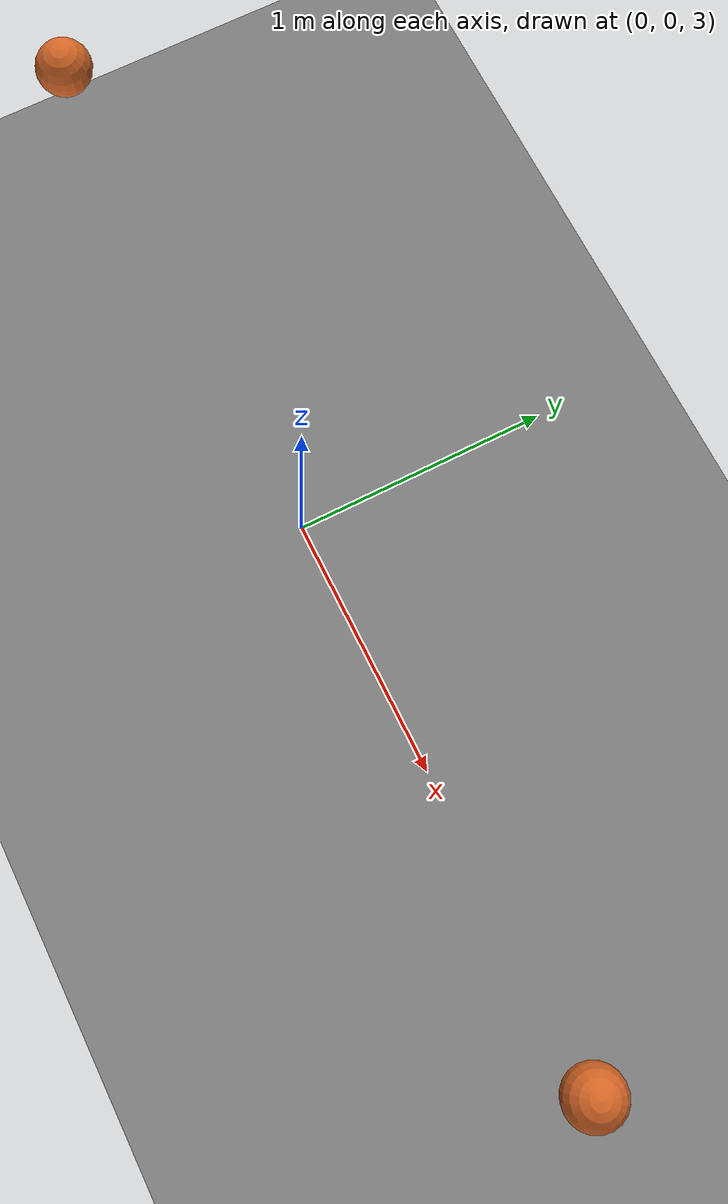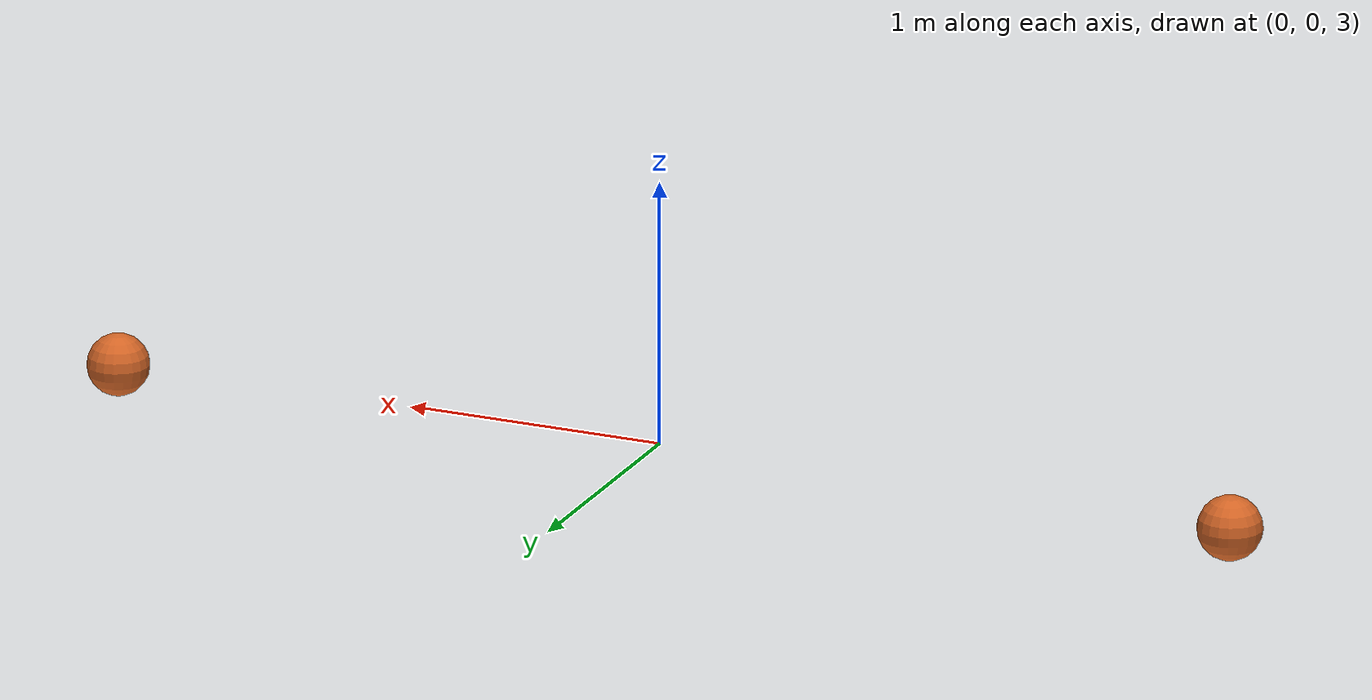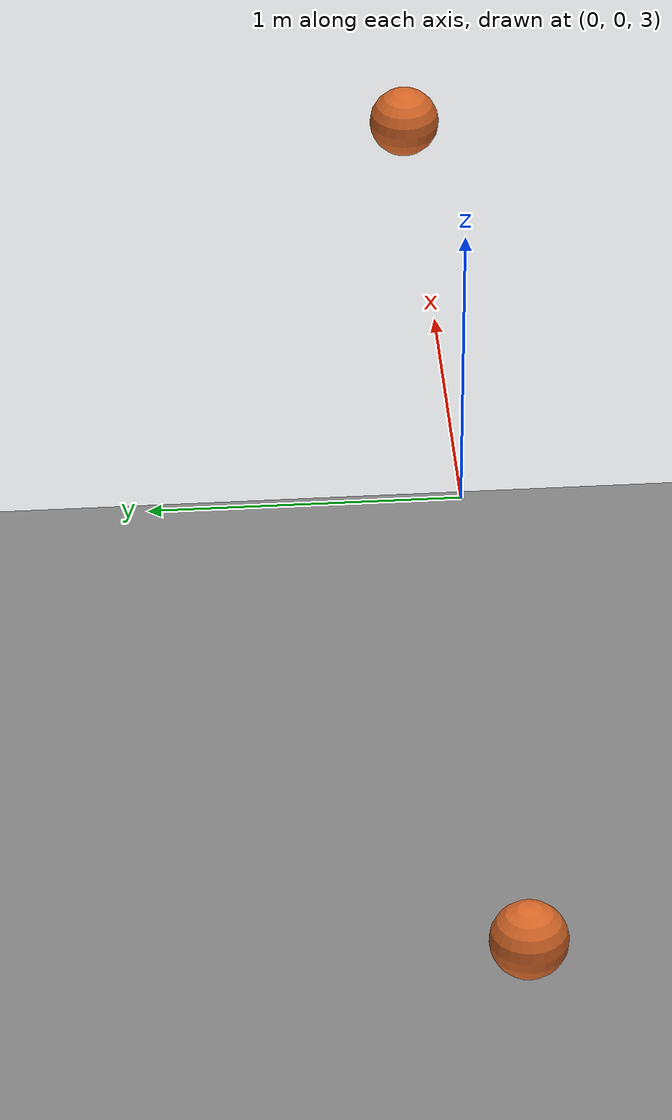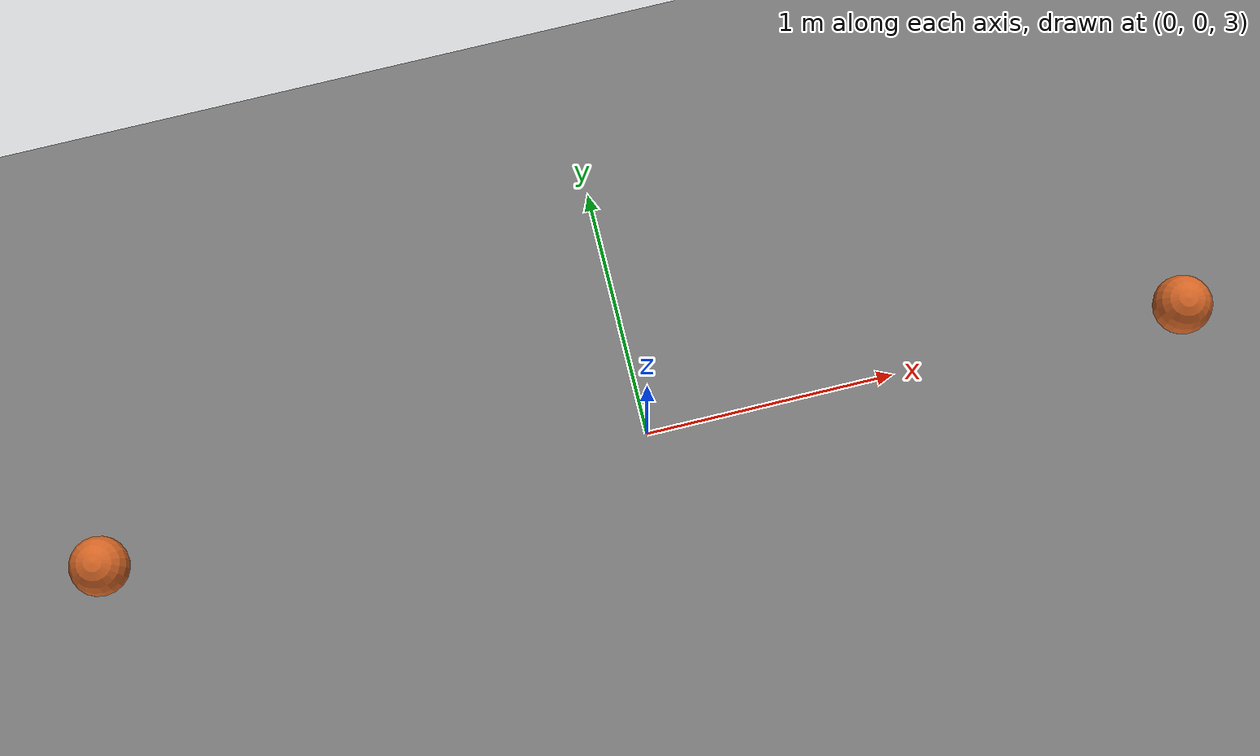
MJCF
<mujoco model="reaction_sim">

  <!--
    density = 1.225 kg/m^3  -> MuJoCo'nun kendi akiskan modeli hava
    surtunmesini uretir. Ayrica bir surtunme kuvveti EKLEMIYORUZ; plan
    geregi surtunme motorun isi.
  -->
  <option timestep="0.0002"
          gravity="0 0 -9.81"
          density="1.225"
          viscosity="0"
          integrator="implicitfast"
          />

  <compiler angle="degree" autolimits="true"/>

  <default>
    <geom solref="-100000 -45" solimp="0.95 0.99 0.001" friction="0.8 0.01 0.001"/>
  </default>

  <worldbody>
    <geom name="floor" type="plane" size="6 4 0.1" pos="0 0 0" contype="1" conaffinity="1"/>

    <body name="ball_left" pos="-2.2 0 3.0">
      <freejoint name="ball_left_free"/>
      <!--
        fluidshape="ellipsoid" + fluidcoef ilk terimi = kut cisim surukleme
        katsayisi. Kure icin 0.47.
      -->
      <geom name="ball_left_geom" type="sphere" size="0.119" mass="0.624"
            contype="1" conaffinity="1"
            fluidshape="ellipsoid" fluidcoef="0.47 0.25 1.5 1.0 1.0"
            rgba="0.84 0.40 0.15 1"/>
    </body>

    <body name="ball_right" pos="2.2 0 3.0">
      <freejoint name="ball_right_free"/>
      <geom name="ball_right_geom" type="sphere" size="0.119" mass="0.624"
            contype="0" conaffinity="0"
            fluidshape="ellipsoid" fluidcoef="0.47 0.25 1.5 1.0 1.0"
            rgba="0.84 0.40 0.15 1"/>
    </body>
  </worldbody>

</mujoco>
